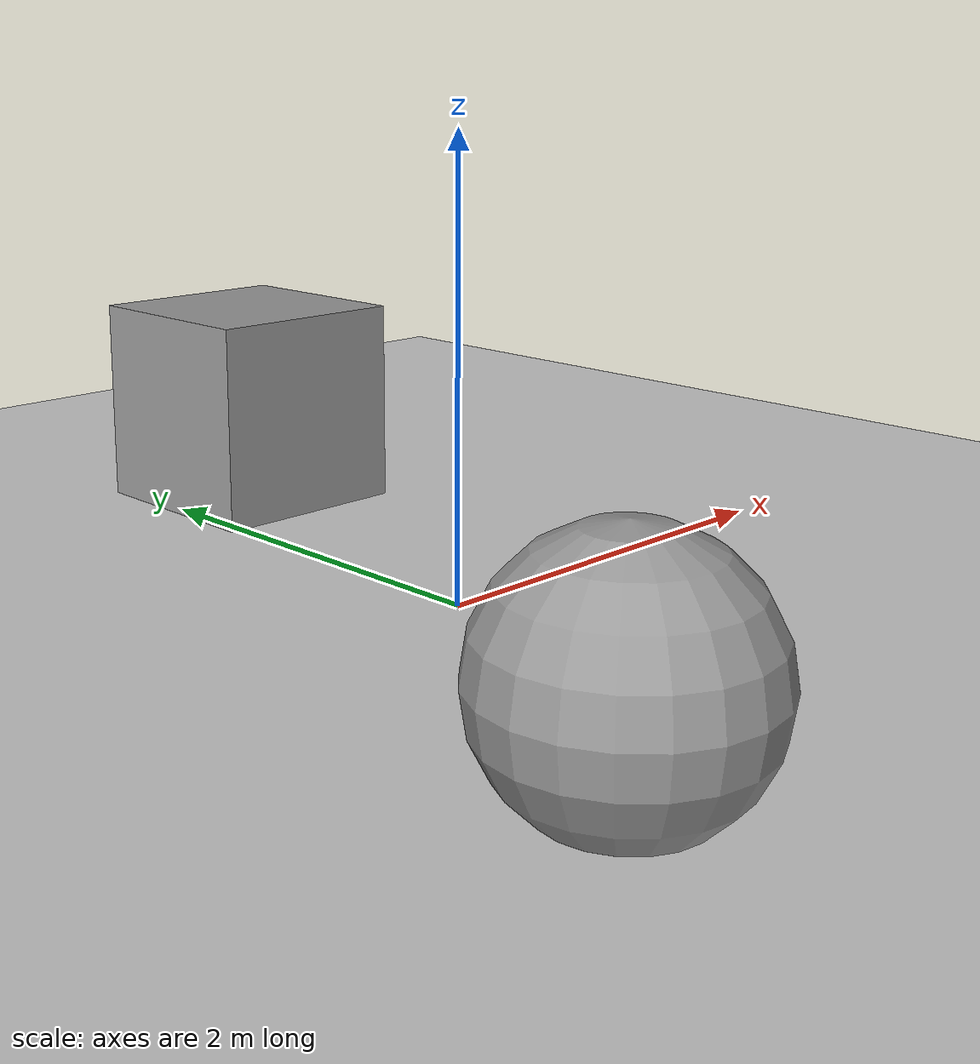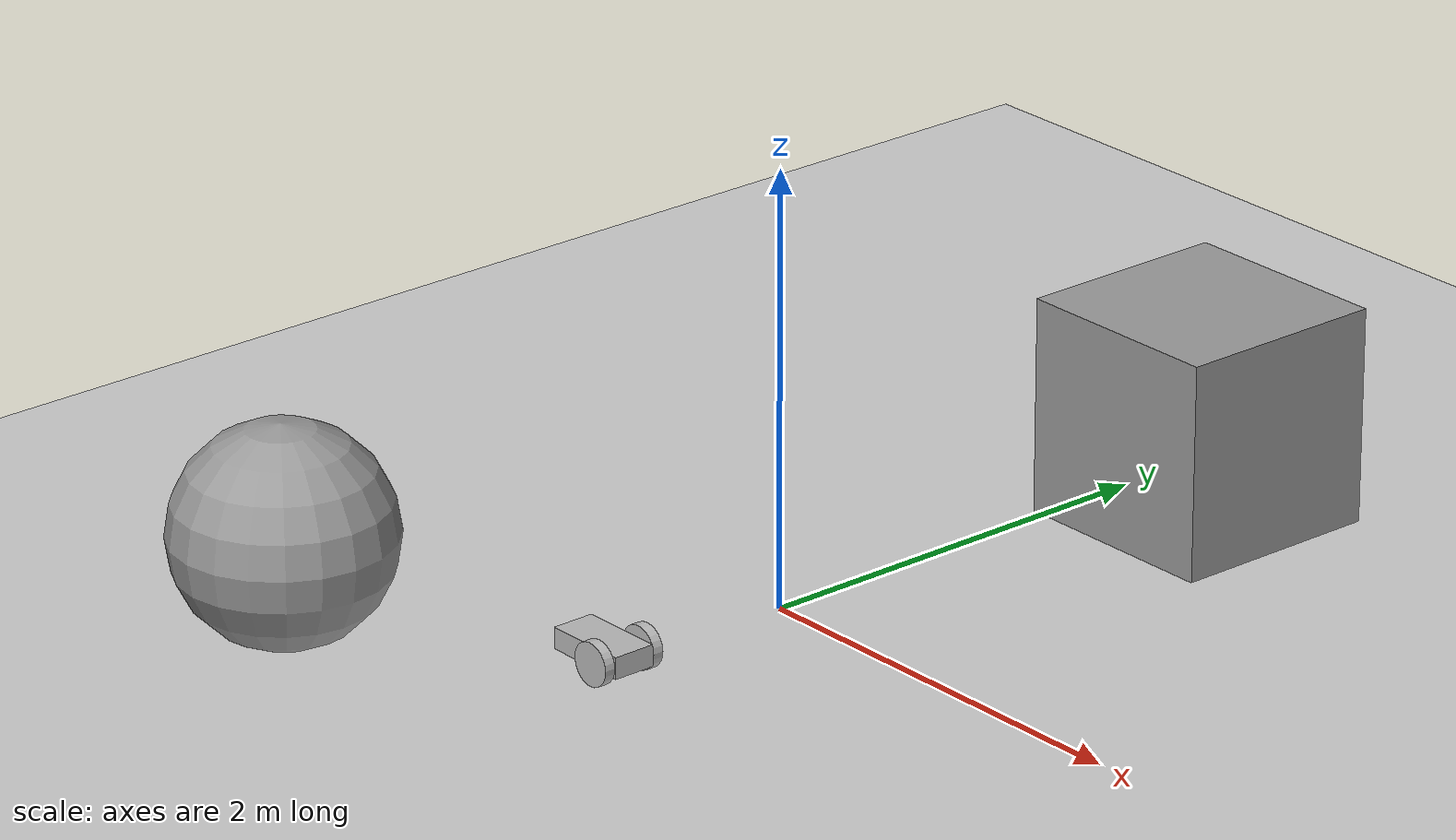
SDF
<sdf version="1.7">
 <world name="default">
  <light name="sun" type="directional">
   <pose>0 0 10 0 -0 0</pose>
   <diffuse>0.8 0.8 0.8 1</diffuse>
   <specular>0.2 0.2 0.2 1</specular>
   <attenuation>
    <range>1000</range>
    <constant>0.9</constant>
    <linear>0.01</linear>
    <quadratic>0.001</quadratic>
   </attenuation>
   <direction>-0.5 0.1 -0.9</direction>
   <spot><inner_angle>0</inner_angle><outer_angle>0</outer_angle><falloff>0</falloff></spot>
  </light>
  <model name="ground_plane">
   <static>1</static>
   <link name="link">
    <collision name="collision">
     <geometry><plane><normal>0 0 1</normal><size>100 100</size></plane></geometry>
     <surface><friction><ode><mu>100</mu><mu2>50</mu2></ode></friction></surface>
    </collision>
    <visual name="visual">
     <cast_shadows>0</cast_shadows>
     <geometry><plane><normal>0 0 1</normal><size>100 100</size></plane></geometry>
     <material>
      <script><uri>file://media/materials/scripts/gazebo.material</uri><name>Gazebo/Grey</name></script>
     </material>
    </visual>
   </link>
  </model>
  <gravity>0 0 -9.8</gravity>
  <magnetic_field>6e-06 2.3e-05 -4.2e-05</magnetic_field>
  <atmosphere type="adiabatic"/>
  <physics type="ode">
   <max_step_size>0.001</max_step_size>
   <real_time_factor>1</real_time_factor>
   <real_time_update_rate>1000</real_time_update_rate>
  </physics>
  <scene><ambient>0.4 0.4 0.4 1</ambient><background>0.7 0.7 0.7 1</background><shadows>1</shadows></scene>
  <spherical_coordinates>
   <surface_model>EARTH_WGS84</surface_model>
   <latitude_deg>0</latitude_deg>
   <longitude_deg>0</longitude_deg>
   <elevation>0</elevation>
   <heading_deg>0</heading_deg>
  </spherical_coordinates>
  <model name="unit_box">
   <pose>0.442882 2.00683 0.499995 -1e-05 -0 -0</pose>
   <link name="link">
    <inertial>
     <mass>1</mass>
     <inertia>
      <ixx>0.166667</ixx>
      <ixy>0</ixy>
      <ixz>0</ixz>
      <iyy>0.166667</iyy>
      <iyz>0</iyz>
      <izz>0.166667</izz>
     </inertia>
    </inertial>
    <collision name="collision"><geometry><box><size>1 1 1</size></box></geometry></collision>
    <visual name="visual">
     <geometry><box><size>1 1 1</size></box></geometry>
     <material>
      <script><name>Gazebo/Grey</name><uri>file://media/materials/scripts/gazebo.material</uri></script>
     </material>
    </visual>
   </link>
  </model>
  <model name="unit_sphere">
   <pose>-1.08187 -1.80436 0.5 0 -0 0</pose>
   <link name="link">
    <inertial>
     <mass>1</mass>
     <inertia><ixx>0.1</ixx><ixy>0</ixy><ixz>0</ixz><iyy>0.1</iyy><iyz>0</iyz><izz>0.1</izz></inertia>
    </inertial>
    <collision name="collision"><geometry><sphere><radius>0.5</radius></sphere></geometry></collision>
    <visual name="visual">
     <geometry><sphere><radius>0.5</radius></sphere></geometry>
     <material>
      <script><name>Gazebo/Grey</name><uri>file://media/materials/scripts/gazebo.material</uri></script>
     </material>
    </visual>
   </link>
   <plugin name="model_push" filename="libmodel_push2.so"/>
  </model>
  <model name="my_robot">
   <static>0</static>
   <link name="chassis">
    <pose>0 0 0.1 0 -0 0</pose>
    <collision name="collision"><geometry><box><size>0.4 0.2 0.1</size></box></geometry></collision>
    <visual name="visual"><geometry><box><size>0.4 0.2 0.1</size></box></geometry></visual>
    <collision name="caster_collision">
     <pose>-0.15 0 -0.05 0 -0 0</pose>
     <geometry><sphere><radius>0.05</radius></sphere></geometry>
     <surface><friction><ode><mu>0</mu><mu2>0</mu2><slip1>1</slip1><slip2>1</slip2></ode></friction></surface>
    </collision>
    <visual name="caster_visual">
     <pose>-0.15 0 -0.05 0 -0 0</pose>
     <geometry><sphere><radius>0.05</radius></sphere></geometry>
    </visual>
    <inertial>
     <inertia><ixx>1</ixx><ixy>0</ixy><ixz>0</ixz><iyy>1</iyy><iyz>0</iyz><izz>1</izz></inertia>
     <mass>1</mass>
    </inertial>
   </link>
   <link name="left_wheel">
    <pose>0.1 0.13 0.1 -0 1.5707 1.5707</pose>
    <collision name="collision">
     <geometry><cylinder><radius>0.1</radius><length>0.05</length></cylinder></geometry>
    </collision>
    <visual name="visual">
     <geometry><cylinder><radius>0.1</radius><length>0.05</length></cylinder></geometry>
    </visual>
    <inertial>
     <inertia><ixx>1</ixx><ixy>0</ixy><ixz>0</ixz><iyy>1</iyy><iyz>0</iyz><izz>1</izz></inertia>
     <mass>1</mass>
    </inertial>
   </link>
   <link name="right_wheel">
    <pose>0.1 -0.13 0.1 -0 1.5707 1.5707</pose>
    <collision name="collision">
     <geometry><cylinder><radius>0.1</radius><length>0.05</length></cylinder></geometry>
    </collision>
    <visual name="visual">
     <geometry><cylinder><radius>0.1</radius><length>0.05</length></cylinder></geometry>
    </visual>
    <inertial>
     <inertia><ixx>1</ixx><ixy>0</ixy><ixz>0</ixz><iyy>1</iyy><iyz>0</iyz><izz>1</izz></inertia>
     <mass>1</mass>
    </inertial>
   </link>
   <joint name="left_wheel_hinge" type="revolute">
    <pose>0 0 -0.03 0 -0 0</pose>
    <child>left_wheel</child>
    <parent>chassis</parent>
    <axis>
     <xyz expressed_in="__model__">0 1 0</xyz>
     <limit><lower>-1e+16</lower><upper>1e+16</upper></limit>
     <dynamics><spring_reference>0</spring_reference><spring_stiffness>0</spring_stiffness></dynamics>
    </axis>
   </joint>
   <joint name="right_wheel_hinge" type="revolute">
    <pose>0 0 0.03 0 -0 0</pose>
    <child>right_wheel</child>
    <parent>chassis</parent>
    <axis>
     <xyz expressed_in="__model__">0 1 0</xyz>
     <limit><lower>-1e+16</lower><upper>1e+16</upper></limit>
     <dynamics><spring_reference>0</spring_reference><spring_stiffness>0</spring_stiffness></dynamics>
    </axis>
   </joint>
   <pose>-0.019205 -0.951692 7e-06 -1e-06 4.3e-05 0.004522</pose>
  </model>
 </world>
</sdf>
